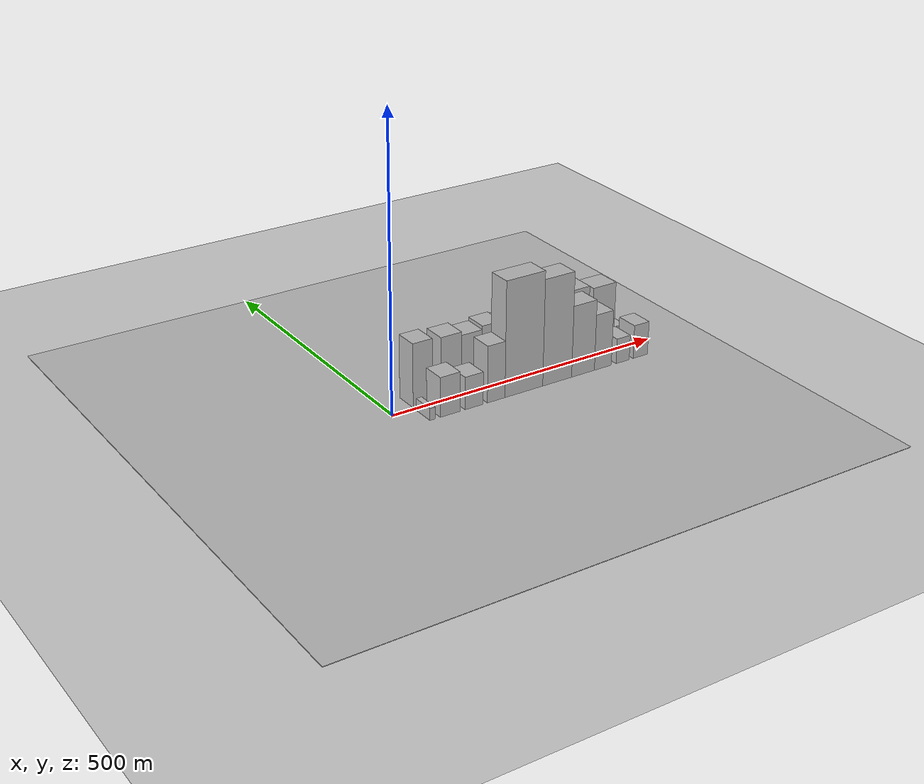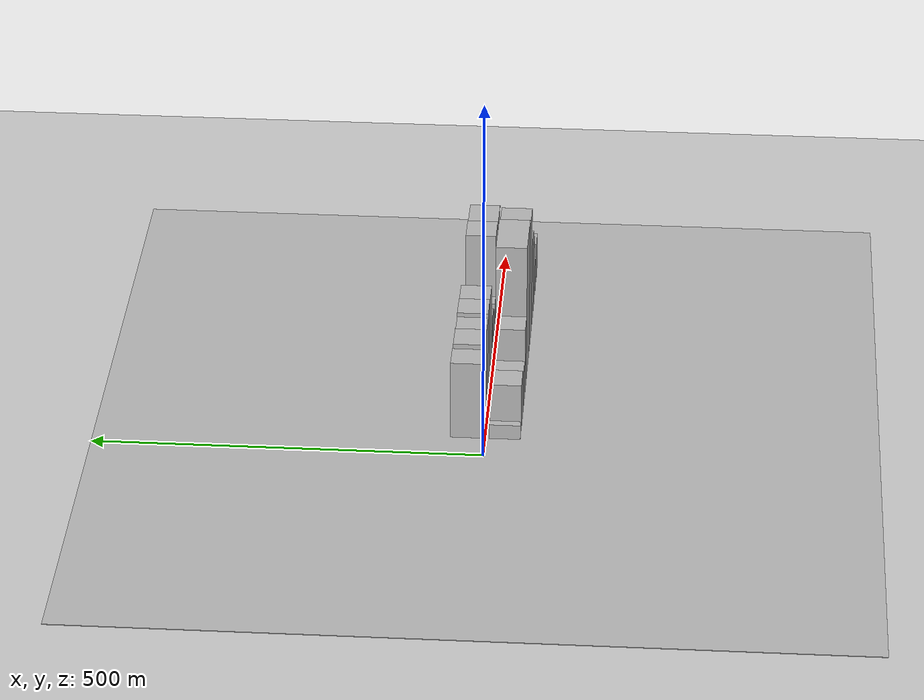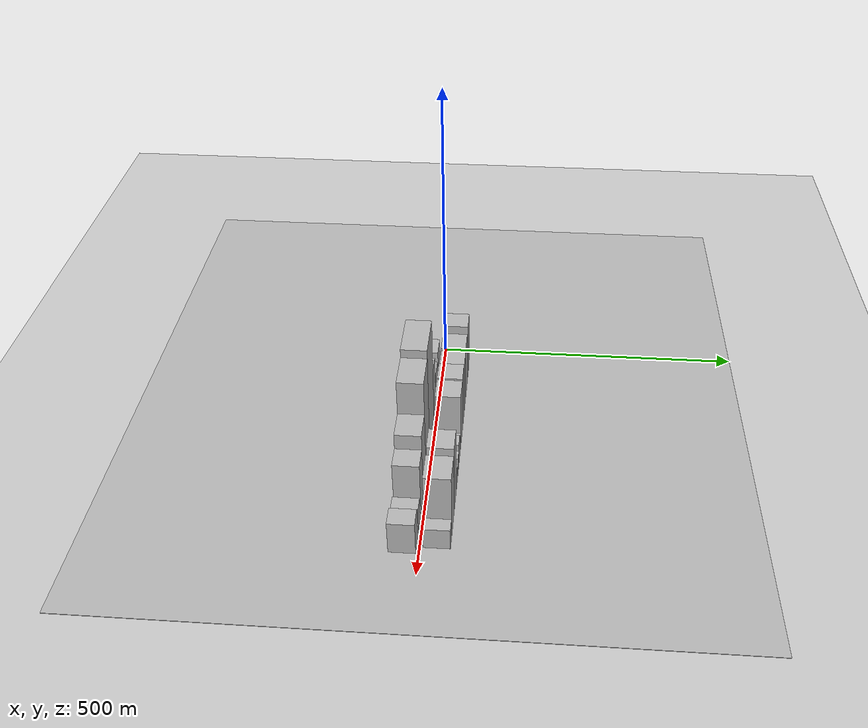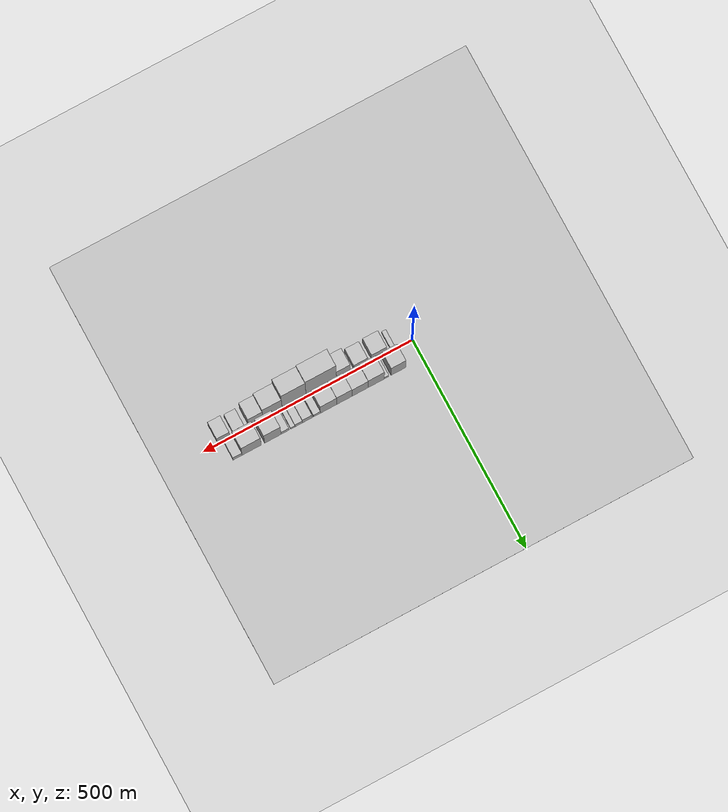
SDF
<?xml version="1.0" encoding="utf-8"?>

<sdf version="1.6">

   <world name="default">

      <gui fullscreen="0">

         <camera name="user_camera">

            <pose>-15 0 4.57585 0 0 0</pose>

            <view_controller>orbit</view_controller>

         </camera>

      </gui>

      <scene>

         <sky>

           <clouds>

             <speed>12</speed>

           </clouds>

         </sky>

         <ambient>0.4 0.4 0.4 1</ambient>

         <background>0.7 0.7 0.7 1</background>

         <shadows>1</shadows>

      </scene>

      <gravity>0 0 -9.8066</gravity>

      <magnetic_field>6e-06 2.3e-05 -4.2e-05</magnetic_field>

      <physics default="0" name="default_physics" type="ode">

         <ode>

            <solver>

               <type>quick</type>

               <iters>10</iters>

               <sor>1.0</sor>

               <use_dynamic_moi_rescaling>0</use_dynamic_moi_rescaling>

            </solver>

            <constraints>

               <cfm>0</cfm>

               <erp>0.2</erp>

               <contact_max_correcting_vel>100</contact_max_correcting_vel>

               <contact_surface_layer>0.001</contact_surface_layer>

            </constraints>

         </ode>

         <max_step_size>0.004</max_step_size>

         <real_time_factor>1</real_time_factor>

         <real_time_update_rate>250</real_time_update_rate>

      </physics>

      <light name="sun" type="directional">

         <cast_shadows>1</cast_shadows>

         <pose>0 0 10 0 0 0</pose>

         <diffuse>0.8 0.8 0.8 1</diffuse>

         <specular>0.2 0.2 0.2 1</specular>

         <attenuation>

            <range>1000</range>

            <constant>0.9</constant>

            <linear>0.01</linear>

            <quadratic>0.001</quadratic>

         </attenuation>

         <direction>-0.5 0.1 -0.9</direction>

      </light>

      <include>

         <name>ground_plane_1</name>

         <uri>model://HANNAS_ground_plane</uri>

         <pose>0 0 0  0 0 0</pose>

      </include>

      <include>

         <name>ground_plane_2</name>

         <uri>model://HANNAS_ground_plane</uri>

         <pose>100 0 0  0 0 0</pose>

      </include>

      <model name="building_1">

         <static>1</static>

         <pose frame="">57.7230 24.5000 0 0.000000 0.000000 1.570796</pose>

         <link name="link">

            <pose frame="">0 0 55.50 0 0 0</pose>

            <collision name="collision">

               <geometry>

                  <box>

                     <size>40.0000 35.4460 111.0000</size>

                  </box>

               </geometry>

               <max_contacts>10</max_contacts>

               <surface>

                  <contact>

                     <ode/>

                  </contact>

                  <bounce/>

                  <friction>

                     <torsional>

                        <ode/>

                     </torsional>

                     <ode/>

                  </friction>

               </surface>

            </collision>

            <visual name="visual">

               <cast_shadows>0</cast_shadows>

               <geometry>

                  <box>

                     <size>40.0000 35.4460 111.0000</size>

                  </box>

               </geometry>

               <material>

                  <script>

                     <uri>model://HANNAS_wall/materials/scripts</uri>

                     <uri>model://HANNAS_wall/materials/textures</uri>

                     <name>vrc/HANNAS_wall</name>

                  </script>

               </material>

            </visual>

            <self_collide>0</self_collide>

            <enable_wind>0</enable_wind>

            <kinematic>0</kinematic>

         </link>

      </model>

      <model name="building_2">

         <static>1</static>

         <pose frame="">85.8500 24.5000 0 0.000000 0.000000 1.570796</pose>

         <link name="link">

            <pose frame="">0 0 12.00 0 0 0</pose>

            <collision name="collision">

               <geometry>

                  <box>

                     <size>40.0000 10.8080 24.0000</size>

                  </box>

               </geometry>

               <max_contacts>10</max_contacts>

               <surface>

                  <contact>

                     <ode/>

                  </contact>

                  <bounce/>

                  <friction>

                     <torsional>

                        <ode/>

                     </torsional>

                     <ode/>

                  </friction>

               </surface>

            </collision>

            <visual name="visual">

               <cast_shadows>0</cast_shadows>

               <geometry>

                  <box>

                     <size>40.0000 10.8080 24.0000</size>

                  </box>

               </geometry>

               <material>

                  <script>

                     <uri>model://HANNAS_wall/materials/scripts</uri>

                     <uri>model://HANNAS_wall/materials/textures</uri>

                     <name>vrc/HANNAS_wall</name>

                  </script>

               </material>

            </visual>

            <self_collide>0</self_collide>

            <enable_wind>0</enable_wind>

            <kinematic>0</kinematic>

         </link>

      </model>

      <model name="building_3">

         <static>1</static>

         <pose frame="">110.3796 24.5000 0 0.000000 0.000000 1.570796</pose>

         <link name="link">

            <pose frame="">0 0 54.00 0 0 0</pose>

            <collision name="collision">

               <geometry>

                  <box>

                     <size>40.0000 38.2512 108.0000</size>

                  </box>

               </geometry>

               <max_contacts>10</max_contacts>

               <surface>

                  <contact>

                     <ode/>

                  </contact>

                  <bounce/>

                  <friction>

                     <torsional>

                        <ode/>

                     </torsional>

                     <ode/>

                  </friction>

               </surface>

            </collision>

            <visual name="visual">

               <cast_shadows>0</cast_shadows>

               <geometry>

                  <box>

                     <size>40.0000 38.2512 108.0000</size>

                  </box>

               </geometry>

               <material>

                  <script>

                     <uri>model://HANNAS_wall/materials/scripts</uri>

                     <uri>model://HANNAS_wall/materials/textures</uri>

                     <name>vrc/HANNAS_wall</name>

                  </script>

               </material>

            </visual>

            <self_collide>0</self_collide>

            <enable_wind>0</enable_wind>

            <kinematic>0</kinematic>

         </link>

      </model>

      <model name="building_4">

         <static>1</static>

         <pose frame="">148.9322 24.5000 0 0.000000 0.000000 1.570796</pose>

         <link name="link">

            <pose frame="">0 0 51.00 0 0 0</pose>

            <collision name="collision">

               <geometry>

                  <box>

                     <size>40.0000 38.8541 102.0000</size>

                  </box>

               </geometry>

               <max_contacts>10</max_contacts>

               <surface>

                  <contact>

                     <ode/>

                  </contact>

                  <bounce/>

                  <friction>

                     <torsional>

                        <ode/>

                     </torsional>

                     <ode/>

                  </friction>

               </surface>

            </collision>

            <visual name="visual">

               <cast_shadows>0</cast_shadows>

               <geometry>

                  <box>

                     <size>40.0000 38.8541 102.0000</size>

                  </box>

               </geometry>

               <material>

                  <script>

                     <uri>model://HANNAS_wall/materials/scripts</uri>

                     <uri>model://HANNAS_wall/materials/textures</uri>

                     <name>vrc/HANNAS_wall</name>

                  </script>

               </material>

            </visual>

            <self_collide>0</self_collide>

            <enable_wind>0</enable_wind>

            <kinematic>0</kinematic>

         </link>

      </model>

      <model name="building_5">

         <static>1</static>

         <pose frame="">186.4778 24.5000 0 0.000000 0.000000 1.570796</pose>

         <link name="link">

            <pose frame="">0 0 54.00 0 0 0</pose>

            <collision name="collision">

               <geometry>

                  <box>

                     <size>40.0000 36.2371 108.0000</size>

                  </box>

               </geometry>

               <max_contacts>10</max_contacts>

               <surface>

                  <contact>

                     <ode/>

                  </contact>

                  <bounce/>

                  <friction>

                     <torsional>

                        <ode/>

                     </torsional>

                     <ode/>

                  </friction>

               </surface>

            </collision>

            <visual name="visual">

               <cast_shadows>0</cast_shadows>

               <geometry>

                  <box>

                     <size>40.0000 36.2371 108.0000</size>

                  </box>

               </geometry>

               <material>

                  <script>

                     <uri>model://HANNAS_wall/materials/scripts</uri>

                     <uri>model://HANNAS_wall/materials/textures</uri>

                     <name>vrc/HANNAS_wall</name>

                  </script>

               </material>

            </visual>

            <self_collide>0</self_collide>

            <enable_wind>0</enable_wind>

            <kinematic>0</kinematic>

         </link>

      </model>

      <model name="building_6">

         <static>1</static>

         <pose frame="">224.2508 24.5000 0 0.000000 0.000000 1.570796</pose>

         <link name="link">

            <pose frame="">0 0 52.50 0 0 0</pose>

            <collision name="collision">

               <geometry>

                  <box>

                     <size>40.0000 39.3089 105.0000</size>

                  </box>

               </geometry>

               <max_contacts>10</max_contacts>

               <surface>

                  <contact>

                     <ode/>

                  </contact>

                  <bounce/>

                  <friction>

                     <torsional>

                        <ode/>

                     </torsional>

                     <ode/>

                  </friction>

               </surface>

            </collision>

            <visual name="visual">

               <cast_shadows>0</cast_shadows>

               <geometry>

                  <box>

                     <size>40.0000 39.3089 105.0000</size>

                  </box>

               </geometry>

               <material>

                  <script>

                     <uri>model://HANNAS_wall/materials/scripts</uri>

                     <uri>model://HANNAS_wall/materials/textures</uri>

                     <name>vrc/HANNAS_wall</name>

                  </script>

               </material>

            </visual>

            <self_collide>0</self_collide>

            <enable_wind>0</enable_wind>

            <kinematic>0</kinematic>

         </link>

      </model>

      <model name="building_7">

         <static>1</static>

         <pose frame="">252.2748 24.5000 0 0.000000 0.000000 1.570796</pose>

         <link name="link">

            <pose frame="">0 0 15.00 0 0 0</pose>

            <collision name="collision">

               <geometry>

                  <box>

                     <size>40.0000 16.7392 30.0000</size>

                  </box>

               </geometry>

               <max_contacts>10</max_contacts>

               <surface>

                  <contact>

                     <ode/>

                  </contact>

                  <bounce/>

                  <friction>

                     <torsional>

                        <ode/>

                     </torsional>

                     <ode/>

                  </friction>

               </surface>

            </collision>

            <visual name="visual">

               <cast_shadows>0</cast_shadows>

               <geometry>

                  <box>

                     <size>40.0000 16.7392 30.0000</size>

                  </box>

               </geometry>

               <material>

                  <script>

                     <uri>model://HANNAS_wall/materials/scripts</uri>

                     <uri>model://HANNAS_wall/materials/textures</uri>

                     <name>vrc/HANNAS_wall</name>

                  </script>

               </material>

            </visual>

            <self_collide>0</self_collide>

            <enable_wind>0</enable_wind>

            <kinematic>0</kinematic>

         </link>

      </model>

      <model name="building_8">

         <static>1</static>

         <pose frame="">275.1483 24.5000 0 0.000000 0.000000 1.570796</pose>

         <link name="link">

            <pose frame="">0 0 22.50 0 0 0</pose>

            <collision name="collision">

               <geometry>

                  <box>

                     <size>40.0000 23.0078 45.0000</size>

                  </box>

               </geometry>

               <max_contacts>10</max_contacts>

               <surface>

                  <contact>

                     <ode/>

                  </contact>

                  <bounce/>

                  <friction>

                     <torsional>

                        <ode/>

                     </torsional>

                     <ode/>

                  </friction>

               </surface>

            </collision>

            <visual name="visual">

               <cast_shadows>0</cast_shadows>

               <geometry>

                  <box>

                     <size>40.0000 23.0078 45.0000</size>

                  </box>

               </geometry>

               <material>

                  <script>

                     <uri>model://HANNAS_wall/materials/scripts</uri>

                     <uri>model://HANNAS_wall/materials/textures</uri>

                     <name>vrc/HANNAS_wall</name>

                  </script>

               </material>

            </visual>

            <self_collide>0</self_collide>

            <enable_wind>0</enable_wind>

            <kinematic>0</kinematic>

         </link>

      </model>

      <model name="building_9">

         <static>1</static>

         <pose frame="">295.5090 24.5000 0 0.000000 0.000000 1.570796</pose>

         <link name="link">

            <pose frame="">0 0 16.50 0 0 0</pose>

            <collision name="collision">

               <geometry>

                  <box>

                     <size>40.0000 17.7137 33.0000</size>

                  </box>

               </geometry>

               <max_contacts>10</max_contacts>

               <surface>

                  <contact>

                     <ode/>

                  </contact>

                  <bounce/>

                  <friction>

                     <torsional>

                        <ode/>

                     </torsional>

                     <ode/>

                  </friction>

               </surface>

            </collision>

            <visual name="visual">

               <cast_shadows>0</cast_shadows>

               <geometry>

                  <box>

                     <size>40.0000 17.7137 33.0000</size>

                  </box>

               </geometry>

               <material>

                  <script>

                     <uri>model://HANNAS_wall/materials/scripts</uri>

                     <uri>model://HANNAS_wall/materials/textures</uri>

                     <name>vrc/HANNAS_wall</name>

                  </script>

               </material>

            </visual>

            <self_collide>0</self_collide>

            <enable_wind>0</enable_wind>

            <kinematic>0</kinematic>

         </link>

      </model>

      <model name="building_10">

         <static>1</static>

         <pose frame="">309.5540 24.5000 0 0.000000 0.000000 1.570796</pose>

         <link name="link">

            <pose frame="">0 0 10.50 0 0 0</pose>

            <collision name="collision">

               <geometry>

                  <box>

                     <size>40.0000 10.3763 21.0000</size>

                  </box>

               </geometry>

               <max_contacts>10</max_contacts>

               <surface>

                  <contact>

                     <ode/>

                  </contact>

                  <bounce/>

                  <friction>

                     <torsional>

                        <ode/>

                     </torsional>

                     <ode/>

                  </friction>

               </surface>

            </collision>

            <visual name="visual">

               <cast_shadows>0</cast_shadows>

               <geometry>

                  <box>

                     <size>40.0000 10.3763 21.0000</size>

                  </box>

               </geometry>

               <material>

                  <script>

                     <uri>model://HANNAS_wall/materials/scripts</uri>

                     <uri>model://HANNAS_wall/materials/textures</uri>

                     <name>vrc/HANNAS_wall</name>

                  </script>

               </material>

            </visual>

            <self_collide>0</self_collide>

            <enable_wind>0</enable_wind>

            <kinematic>0</kinematic>

         </link>

      </model>

      <model name="building_11">

         <static>1</static>

         <pose frame="">328.1984 24.5000 0 0.000000 0.000000 1.570796</pose>

         <link name="link">

            <pose frame="">0 0 16.50 0 0 0</pose>

            <collision name="collision">

               <geometry>

                  <box>

                     <size>40.0000 18.9124 33.0000</size>

                  </box>

               </geometry>

               <max_contacts>10</max_contacts>

               <surface>

                  <contact>

                     <ode/>

                  </contact>

                  <bounce/>

                  <friction>

                     <torsional>

                        <ode/>

                     </torsional>

                     <ode/>

                  </friction>

               </surface>

            </collision>

            <visual name="visual">

               <cast_shadows>0</cast_shadows>

               <geometry>

                  <box>

                     <size>40.0000 18.9124 33.0000</size>

                  </box>

               </geometry>

               <material>

                  <script>

                     <uri>model://HANNAS_wall/materials/scripts</uri>

                     <uri>model://HANNAS_wall/materials/textures</uri>

                     <name>vrc/HANNAS_wall</name>

                  </script>

               </material>

            </visual>

            <self_collide>0</self_collide>

            <enable_wind>0</enable_wind>

            <kinematic>0</kinematic>

         </link>

      </model>

      <model name="building_12">

         <static>1</static>

         <pose frame="">357.2224 24.5000 0 0.000000 0.000000 1.570796</pose>

         <link name="link">

            <pose frame="">0 0 63.00 0 0 0</pose>

            <collision name="collision">

               <geometry>

                  <box>

                     <size>40.0000 39.1356 126.0000</size>

                  </box>

               </geometry>

               <max_contacts>10</max_contacts>

               <surface>

                  <contact>

                     <ode/>

                  </contact>

                  <bounce/>

                  <friction>

                     <torsional>

                        <ode/>

                     </torsional>

                     <ode/>

                  </friction>

               </surface>

            </collision>

            <visual name="visual">

               <cast_shadows>0</cast_shadows>

               <geometry>

                  <box>

                     <size>40.0000 39.1356 126.0000</size>

                  </box>

               </geometry>

               <material>

                  <script>

                     <uri>model://HANNAS_wall/materials/scripts</uri>

                     <uri>model://HANNAS_wall/materials/textures</uri>

                     <name>vrc/HANNAS_wall</name>

                  </script>

               </material>

            </visual>

            <self_collide>0</self_collide>

            <enable_wind>0</enable_wind>

            <kinematic>0</kinematic>

         </link>

      </model>

      <model name="building_13">

         <static>1</static>

         <pose frame="">407.6210 24.5000 0 0.000000 0.000000 1.570796</pose>

         <link name="link">

            <pose frame="">0 0 60.00 0 0 0</pose>

            <collision name="collision">

               <geometry>

                  <box>

                     <size>40.0000 45.6616 120.0000</size>

                  </box>

               </geometry>

               <max_contacts>10</max_contacts>

               <surface>

                  <contact>

                     <ode/>

                  </contact>

                  <bounce/>

                  <friction>

                     <torsional>

                        <ode/>

                     </torsional>

                     <ode/>

                  </friction>

               </surface>

            </collision>

            <visual name="visual">

               <cast_shadows>0</cast_shadows>

               <geometry>

                  <box>

                     <size>40.0000 45.6616 120.0000</size>

                  </box>

               </geometry>

               <material>

                  <script>

                     <uri>model://HANNAS_wall/materials/scripts</uri>

                     <uri>model://HANNAS_wall/materials/textures</uri>

                     <name>vrc/HANNAS_wall</name>

                  </script>

               </material>

            </visual>

            <self_collide>0</self_collide>

            <enable_wind>0</enable_wind>

            <kinematic>0</kinematic>

         </link>

      </model>

      <model name="building_14">

         <static>1</static>

         <pose frame="">441.1496 24.5000 0 0.000000 0.000000 1.570796</pose>

         <link name="link">

            <pose frame="">0 0 19.50 0 0 0</pose>

            <collision name="collision">

               <geometry>

                  <box>

                     <size>40.0000 21.3957 39.0000</size>

                  </box>

               </geometry>

               <max_contacts>10</max_contacts>

               <surface>

                  <contact>

                     <ode/>

                  </contact>

                  <bounce/>

                  <friction>

                     <torsional>

                        <ode/>

                     </torsional>

                     <ode/>

                  </friction>

               </surface>

            </collision>

            <visual name="visual">

               <cast_shadows>0</cast_shadows>

               <geometry>

                  <box>

                     <size>40.0000 21.3957 39.0000</size>

                  </box>

               </geometry>

               <material>

                  <script>

                     <uri>model://HANNAS_wall/materials/scripts</uri>

                     <uri>model://HANNAS_wall/materials/textures</uri>

                     <name>vrc/HANNAS_wall</name>

                  </script>

               </material>

            </visual>

            <self_collide>0</self_collide>

            <enable_wind>0</enable_wind>

            <kinematic>0</kinematic>

         </link>

      </model>

      <model name="building_15">

         <static>1</static>

         <pose frame="">45.0399 -24.5000 0 0.000000 0.000000 1.570796</pose>

         <link name="link">

            <pose frame="">0 0 10.50 0 0 0</pose>

            <collision name="collision">

               <geometry>

                  <box>

                     <size>40.0000 10.0799 21.0000</size>

                  </box>

               </geometry>

               <max_contacts>10</max_contacts>

               <surface>

                  <contact>

                     <ode/>

                  </contact>

                  <bounce/>

                  <friction>

                     <torsional>

                        <ode/>

                     </torsional>

                     <ode/>

                  </friction>

               </surface>

            </collision>

            <visual name="visual">

               <cast_shadows>0</cast_shadows>

               <geometry>

                  <box>

                     <size>40.0000 10.0799 21.0000</size>

                  </box>

               </geometry>

               <material>

                  <script>

                     <uri>model://HANNAS_wall/materials/scripts</uri>

                     <uri>model://HANNAS_wall/materials/textures</uri>

                     <name>vrc/HANNAS_wall</name>

                  </script>

               </material>

            </visual>

            <self_collide>0</self_collide>

            <enable_wind>0</enable_wind>

            <kinematic>0</kinematic>

         </link>

      </model>

      <model name="building_16">

         <static>1</static>

         <pose frame="">77.2134 -24.5000 0 0.000000 0.000000 1.570796</pose>

         <link name="link">

            <pose frame="">0 0 34.50 0 0 0</pose>

            <collision name="collision">

               <geometry>

                  <box>

                     <size>40.0000 36.2671 69.0000</size>

                  </box>

               </geometry>

               <max_contacts>10</max_contacts>

               <surface>

                  <contact>

                     <ode/>

                  </contact>

                  <bounce/>

                  <friction>

                     <torsional>

                        <ode/>

                     </torsional>

                     <ode/>

                  </friction>

               </surface>

            </collision>

            <visual name="visual">

               <cast_shadows>0</cast_shadows>

               <geometry>

                  <box>

                     <size>40.0000 36.2671 69.0000</size>

                  </box>

               </geometry>

               <material>

                  <script>

                     <uri>model://HANNAS_wall/materials/scripts</uri>

                     <uri>model://HANNAS_wall/materials/textures</uri>

                     <name>vrc/HANNAS_wall</name>

                  </script>

               </material>

            </visual>

            <self_collide>0</self_collide>

            <enable_wind>0</enable_wind>

            <kinematic>0</kinematic>

         </link>

      </model>

      <model name="building_17">

         <static>1</static>

         <pose frame="">121.1402 -24.5000 0 0.000000 0.000000 1.570796</pose>

         <link name="link">

            <pose frame="">0 0 28.50 0 0 0</pose>

            <collision name="collision">

               <geometry>

                  <box>

                     <size>40.0000 33.5865 57.0000</size>

                  </box>

               </geometry>

               <max_contacts>10</max_contacts>

               <surface>

                  <contact>

                     <ode/>

                  </contact>

                  <bounce/>

                  <friction>

                     <torsional>

                        <ode/>

                     </torsional>

                     <ode/>

                  </friction>

               </surface>

            </collision>

            <visual name="visual">

               <cast_shadows>0</cast_shadows>

               <geometry>

                  <box>

                     <size>40.0000 33.5865 57.0000</size>

                  </box>

               </geometry>

               <material>

                  <script>

                     <uri>model://HANNAS_wall/materials/scripts</uri>

                     <uri>model://HANNAS_wall/materials/textures</uri>

                     <name>vrc/HANNAS_wall</name>

                  </script>

               </material>

            </visual>

            <self_collide>0</self_collide>

            <enable_wind>0</enable_wind>

            <kinematic>0</kinematic>

         </link>

      </model>

      <model name="building_18">

         <static>1</static>

         <pose frame="">162.4918 -24.5000 0 0.000000 0.000000 1.570796</pose>

         <link name="link">

            <pose frame="">0 0 49.50 0 0 0</pose>

            <collision name="collision">

               <geometry>

                  <box>

                     <size>40.0000 33.1167 99.0000</size>

                  </box>

               </geometry>

               <max_contacts>10</max_contacts>

               <surface>

                  <contact>

                     <ode/>

                  </contact>

                  <bounce/>

                  <friction>

                     <torsional>

                        <ode/>

                     </torsional>

                     <ode/>

                  </friction>

               </surface>

            </collision>

            <visual name="visual">

               <cast_shadows>0</cast_shadows>

               <geometry>

                  <box>

                     <size>40.0000 33.1167 99.0000</size>

                  </box>

               </geometry>

               <material>

                  <script>

                     <uri>model://HANNAS_wall/materials/scripts</uri>

                     <uri>model://HANNAS_wall/materials/textures</uri>

                     <name>vrc/HANNAS_wall</name>

                  </script>

               </material>

            </visual>

            <self_collide>0</self_collide>

            <enable_wind>0</enable_wind>

            <kinematic>0</kinematic>

         </link>

      </model>

      <model name="building_19">

         <static>1</static>

         <pose frame="">215.4369 -24.5000 0 0.000000 0.000000 1.570796</pose>

         <link name="link">

            <pose frame="">0 0 100.50 0 0 0</pose>

            <collision name="collision">

               <geometry>

                  <box>

                     <size>40.0000 72.7735 201.0000</size>

                  </box>

               </geometry>

               <max_contacts>10</max_contacts>

               <surface>

                  <contact>

                     <ode/>

                  </contact>

                  <bounce/>

                  <friction>

                     <torsional>

                        <ode/>

                     </torsional>

                     <ode/>

                  </friction>

               </surface>

            </collision>

            <visual name="visual">

               <cast_shadows>0</cast_shadows>

               <geometry>

                  <box>

                     <size>40.0000 72.7735 201.0000</size>

                  </box>

               </geometry>

               <material>

                  <script>

                     <uri>model://HANNAS_wall/materials/scripts</uri>

                     <uri>model://HANNAS_wall/materials/textures</uri>

                     <name>vrc/HANNAS_wall</name>

                  </script>

               </material>

            </visual>

            <self_collide>0</self_collide>

            <enable_wind>0</enable_wind>

            <kinematic>0</kinematic>

         </link>

      </model>

      <model name="building_20">

         <static>1</static>

         <pose frame="">280.3300 -24.5000 0 0.000000 0.000000 1.570796</pose>

         <link name="link">

            <pose frame="">0 0 93.00 0 0 0</pose>

            <collision name="collision">

               <geometry>

                  <box>

                     <size>40.0000 57.0126 186.0000</size>

                  </box>

               </geometry>

               <max_contacts>10</max_contacts>

               <surface>

                  <contact>

                     <ode/>

                  </contact>

                  <bounce/>

                  <friction>

                     <torsional>

                        <ode/>

                     </torsional>

                     <ode/>

                  </friction>

               </surface>

            </collision>

            <visual name="visual">

               <cast_shadows>0</cast_shadows>

               <geometry>

                  <box>

                     <size>40.0000 57.0126 186.0000</size>

                  </box>

               </geometry>

               <material>

                  <script>

                     <uri>model://HANNAS_wall/materials/scripts</uri>

                     <uri>model://HANNAS_wall/materials/textures</uri>

                     <name>vrc/HANNAS_wall</name>

                  </script>

               </material>

            </visual>

            <self_collide>0</self_collide>

            <enable_wind>0</enable_wind>

            <kinematic>0</kinematic>

         </link>

      </model>

      <model name="building_21">

         <static>1</static>

         <pose frame="">331.6544 -24.5000 0 0.000000 0.000000 1.570796</pose>

         <link name="link">

            <pose frame="">0 0 63.00 0 0 0</pose>

            <collision name="collision">

               <geometry>

                  <box>

                     <size>40.0000 45.6363 126.0000</size>

                  </box>

               </geometry>

               <max_contacts>10</max_contacts>

               <surface>

                  <contact>

                     <ode/>

                  </contact>

                  <bounce/>

                  <friction>

                     <torsional>

                        <ode/>

                     </torsional>

                     <ode/>

                  </friction>

               </surface>

            </collision>

            <visual name="visual">

               <cast_shadows>0</cast_shadows>

               <geometry>

                  <box>

                     <size>40.0000 45.6363 126.0000</size>

                  </box>

               </geometry>

               <material>

                  <script>

                     <uri>model://HANNAS_wall/materials/scripts</uri>

                     <uri>model://HANNAS_wall/materials/textures</uri>

                     <name>vrc/HANNAS_wall</name>

                  </script>

               </material>

            </visual>

            <self_collide>0</self_collide>

            <enable_wind>0</enable_wind>

            <kinematic>0</kinematic>

         </link>

      </model>

      <model name="building_22">

         <static>1</static>

         <pose frame="">371.6472 -24.5000 0 0.000000 0.000000 1.570796</pose>

         <link name="link">

            <pose frame="">0 0 49.50 0 0 0</pose>

            <collision name="collision">

               <geometry>

                  <box>

                     <size>40.0000 34.3494 99.0000</size>

                  </box>

               </geometry>

               <max_contacts>10</max_contacts>

               <surface>

                  <contact>

                     <ode/>

                  </contact>

                  <bounce/>

                  <friction>

                     <torsional>

                        <ode/>

                     </torsional>

                     <ode/>

                  </friction>

               </surface>

            </collision>

            <visual name="visual">

               <cast_shadows>0</cast_shadows>

               <geometry>

                  <box>

                     <size>40.0000 34.3494 99.0000</size>

                  </box>

               </geometry>

               <material>

                  <script>

                     <uri>model://HANNAS_wall/materials/scripts</uri>

                     <uri>model://HANNAS_wall/materials/textures</uri>

                     <name>vrc/HANNAS_wall</name>

                  </script>

               </material>

            </visual>

            <self_collide>0</self_collide>

            <enable_wind>0</enable_wind>

            <kinematic>0</kinematic>

         </link>

      </model>

      <model name="building_23">

         <static>1</static>

         <pose frame="">412.2555 -24.5000 0 0.000000 0.000000 1.570796</pose>

         <link name="link">

            <pose frame="">0 0 22.50 0 0 0</pose>

            <collision name="collision">

               <geometry>

                  <box>

                     <size>40.0000 26.8672 45.0000</size>

                  </box>

               </geometry>

               <max_contacts>10</max_contacts>

               <surface>

                  <contact>

                     <ode/>

                  </contact>

                  <bounce/>

                  <friction>

                     <torsional>

                        <ode/>

                     </torsional>

                     <ode/>

                  </friction>

               </surface>

            </collision>

            <visual name="visual">

               <cast_shadows>0</cast_shadows>

               <geometry>

                  <box>

                     <size>40.0000 26.8672 45.0000</size>

                  </box>

               </geometry>

               <material>

                  <script>

                     <uri>model://HANNAS_wall/materials/scripts</uri>

                     <uri>model://HANNAS_wall/materials/textures</uri>

                     <name>vrc/HANNAS_wall</name>

                  </script>

               </material>

            </visual>

            <self_collide>0</self_collide>

            <enable_wind>0</enable_wind>

            <kinematic>0</kinematic>

         </link>

      </model>

      <model name="building_24">

         <static>1</static>

         <pose frame="">448.6896 -24.5000 0 0.000000 0.000000 1.570796</pose>

         <link name="link">

            <pose frame="">0 0 30.00 0 0 0</pose>

            <collision name="collision">

               <geometry>

                  <box>

                     <size>40.0000 30.0010 60.0000</size>

                  </box>

               </geometry>

               <max_contacts>10</max_contacts>

               <surface>

                  <contact>

                     <ode/>

                  </contact>

                  <bounce/>

                  <friction>

                     <torsional>

                        <ode/>

                     </torsional>

                     <ode/>

                  </friction>

               </surface>

            </collision>

            <visual name="visual">

               <cast_shadows>0</cast_shadows>

               <geometry>

                  <box>

                     <size>40.0000 30.0010 60.0000</size>

                  </box>

               </geometry>

               <material>

                  <script>

                     <uri>model://HANNAS_wall/materials/scripts</uri>

                     <uri>model://HANNAS_wall/materials/textures</uri>

                     <name>vrc/HANNAS_wall</name>

                  </script>

               </material>

            </visual>

            <self_collide>0</self_collide>

            <enable_wind>0</enable_wind>

            <kinematic>0</kinematic>

         </link>

      </model>

   </world>

</sdf>

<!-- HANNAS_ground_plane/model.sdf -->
<sdf version="1.4">
<model name="HANNAS_ground_plane">
  <static>true</static>
    <link name="link">
      <collision name="collision">
        <geometry>
          <plane>
            <normal>0 0 1</normal>
            <size>1000 1000</size>
          </plane>
        </geometry>
        <surface>
          <friction>
            <ode>
              <mu>100</mu>
              <mu2>50</mu2>
            </ode>
          </friction>
        </surface>
      </collision>
      <visual name="visual">
        <cast_shadows>false</cast_shadows>
        <geometry>
          <plane>
            <normal>0 0 1</normal>
            <size>1000 1000</size>
          </plane>
        </geometry>
        <material>
          <script>
            <uri>model://HANNAS_ground_plane/materials/scripts/HANNAS_ground_plane.material</uri>
	    <uri>model://HANNAS_ground_plane/materials/textures</uri>
            <name>HANNASGroundPlane/Image</name>
          </script>
        </material>
      </visual>
    </link>
  </model>
</sdf>
